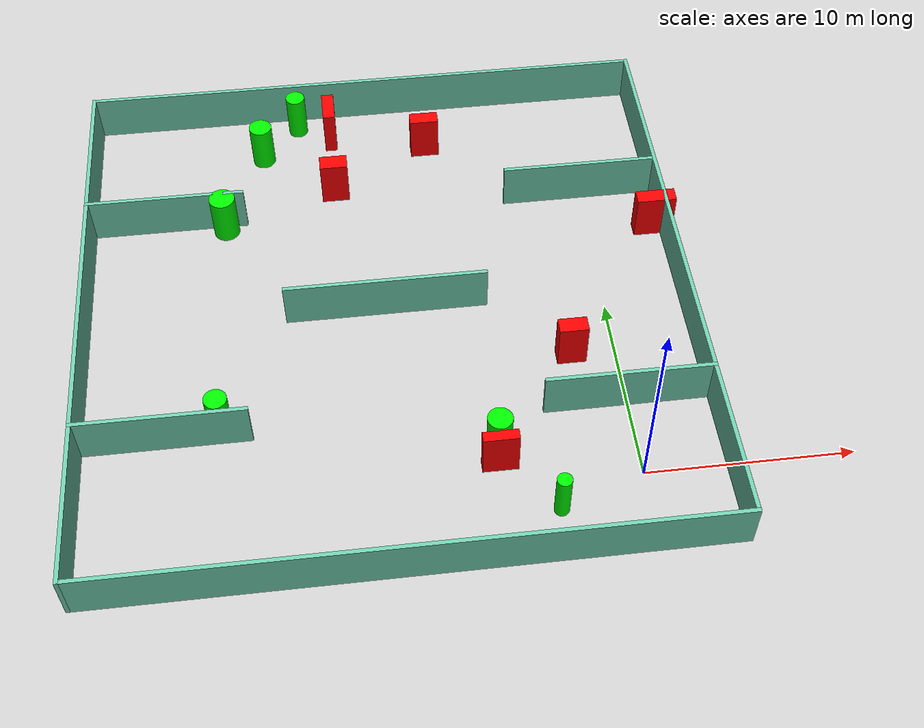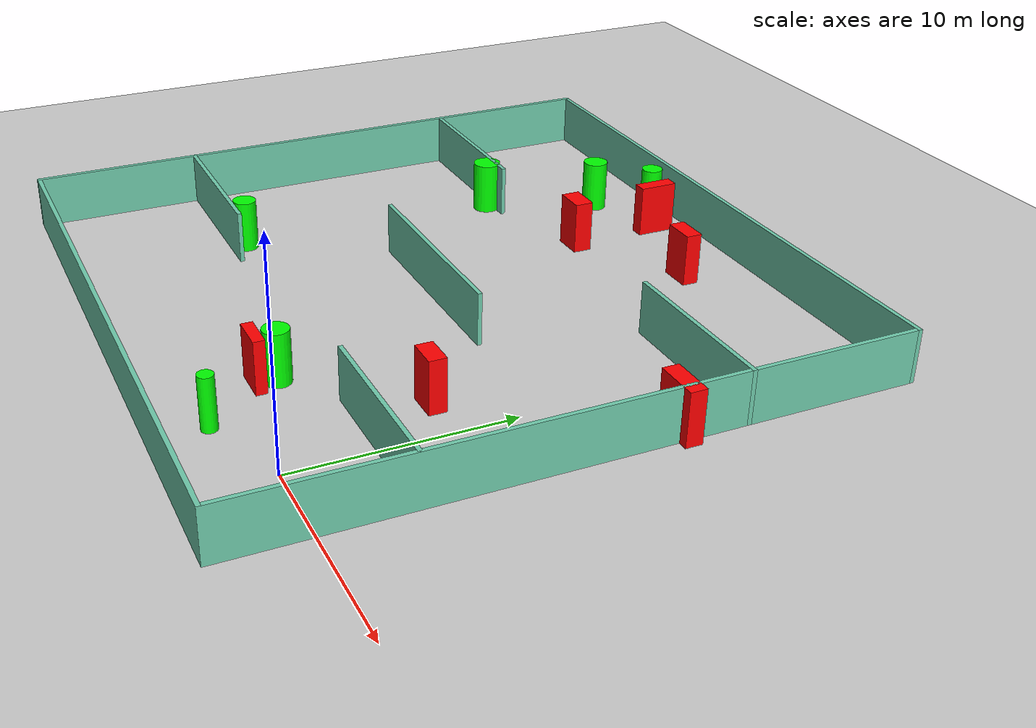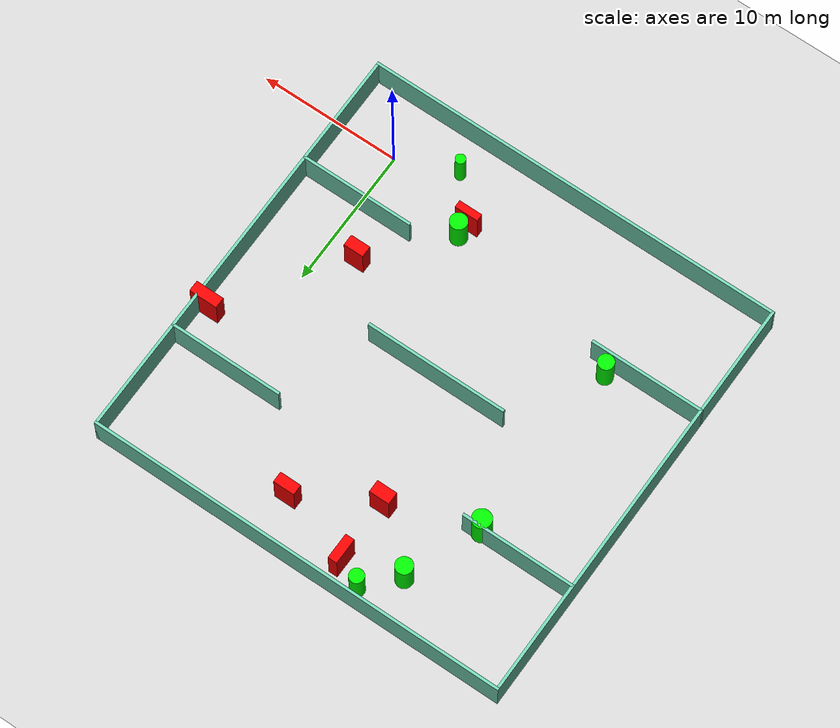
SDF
<sdf version="1.7">
 <world name="default">
  <light name="sun" type="directional">
   <pose>0 0 10 0 -0 0</pose>
   <diffuse>0.8 0.8 0.8 1</diffuse>
   <specular>0.2 0.2 0.2 1</specular>
   <attenuation>
    <range>1000</range>
    <constant>0.9</constant>
    <linear>0.01</linear>
    <quadratic>0.001</quadratic>
   </attenuation>
   <direction>-0.5 0.1 -0.9</direction>
   <spot><inner_angle>0</inner_angle><outer_angle>0</outer_angle><falloff>0</falloff></spot>
  </light>
  <model name="ground_plane">
   <static>1</static>
   <link name="link">
    <collision name="collision">
     <geometry><plane><normal>0 0 1</normal><size>100 100</size></plane></geometry>
     <surface>
      <contact><collide_bitmask>65535</collide_bitmask></contact>
      <friction><ode><mu>100</mu><mu2>50</mu2></ode></friction>
     </surface>
    </collision>
    <visual name="visual">
     <cast_shadows>0</cast_shadows>
     <geometry><plane><normal>0 0 1</normal><size>100 100</size></plane></geometry>
     <material>
      <script><uri>file://media/materials/scripts/gazebo.material</uri><name>Gazebo/Grey</name></script>
     </material>
    </visual>
   </link>
  </model>
  <gravity>0 0 -9.8</gravity>
  <magnetic_field>6e-06 2.3e-05 -4.2e-05</magnetic_field>
  <atmosphere type="adiabatic"/>
  <physics type="ode">
   <max_step_size>0.001</max_step_size>
   <real_time_factor>1</real_time_factor>
   <real_time_update_rate>1000</real_time_update_rate>
  </physics>
  <scene><ambient>0.4 0.4 0.4 1</ambient><background>0.7 0.7 0.7 1</background><shadows>1</shadows></scene>
  <spherical_coordinates>
   <surface_model>EARTH_WGS84</surface_model>
   <latitude_deg>0</latitude_deg>
   <longitude_deg>0</longitude_deg>
   <elevation>0</elevation>
   <heading_deg>0</heading_deg>
  </spherical_coordinates>
  <model name="my_base_walls">
   <link name="Wall_10">
    <collision name="Wall_10_Collision">
     <geometry><box><size>8.2 0.2 2.5</size></box></geometry>
     <pose>0 0 1.25 0 -0 0</pose>
    </collision>
    <visual name="Wall_10_Visual">
     <pose>0 0 1.25 0 -0 0</pose>
     <geometry><box><size>8.2 0.2 2.5</size></box></geometry>
     <material>
      <script><uri>file://media/materials/scripts/gazebo.material</uri><name>Gazebo/Grey</name></script>
      <ambient>0.435294 0.796078 0.67451 1</ambient>
     </material>
     <meta><layer>0</layer></meta>
    </visual>
    <pose>-11 -7 0 0 -0 0</pose>
   </link>
   <link name="Wall_12">
    <collision name="Wall_12_Collision">
     <geometry><box><size>8.2 0.2 2.5</size></box></geometry>
     <pose>0 0 1.25 0 -0 0</pose>
    </collision>
    <visual name="Wall_12_Visual">
     <pose>0 0 1.25 0 -0 0</pose>
     <geometry><box><size>8.2 0.2 2.5</size></box></geometry>
     <material>
      <script><uri>file://media/materials/scripts/gazebo.material</uri><name>Gazebo/Grey</name></script>
      <ambient>0.435294 0.796078 0.67451 1</ambient>
     </material>
     <meta><layer>0</layer></meta>
    </visual>
    <pose>-11 7 0 0 -0 0</pose>
   </link>
   <link name="Wall_14">
    <collision name="Wall_14_Collision">
     <geometry><box><size>8.2 0.2 2.5</size></box></geometry>
     <pose>0 0 1.25 0 -0 0</pose>
    </collision>
    <visual name="Wall_14_Visual">
     <pose>0 0 1.25 0 -0 0</pose>
     <geometry><box><size>8.2 0.2 2.5</size></box></geometry>
     <material>
      <script><uri>file://media/materials/scripts/gazebo.material</uri><name>Gazebo/Grey</name></script>
      <ambient>0.435294 0.796078 0.67451 1</ambient>
     </material>
     <meta><layer>0</layer></meta>
    </visual>
    <pose>11 7 0 0 -0 3.14159</pose>
   </link>
   <link name="Wall_16">
    <collision name="Wall_16_Collision">
     <geometry><box><size>10.2 0.2 2.5</size></box></geometry>
     <pose>0 0 1.25 0 -0 0</pose>
    </collision>
    <visual name="Wall_16_Visual">
     <pose>0 0 1.25 0 -0 0</pose>
     <geometry><box><size>10.2 0.2 2.5</size></box></geometry>
     <material>
      <script><uri>file://media/materials/scripts/gazebo.material</uri><name>Gazebo/Grey</name></script>
      <ambient>0.435294 0.796078 0.67451 1</ambient>
     </material>
     <meta><layer>0</layer></meta>
    </visual>
    <pose>0 0 0 0 -0 3.14159</pose>
   </link>
   <link name="Wall_2">
    <collision name="Wall_2_Collision">
     <geometry><box><size>30.2 0.2 2.5</size></box></geometry>
     <pose>0 0 1.25 0 -0 0</pose>
    </collision>
    <visual name="Wall_2_Visual">
     <pose>0 0 1.25 0 -0 0</pose>
     <geometry><box><size>30.2 0.2 2.5</size></box></geometry>
     <material>
      <script><uri>file://media/materials/scripts/gazebo.material</uri><name>Gazebo/Grey</name></script>
      <ambient>0.435294 0.796078 0.67451 1</ambient>
     </material>
     <meta><layer>0</layer></meta>
    </visual>
    <pose>0 -15 0 0 -0 3.14159</pose>
   </link>
   <link name="Wall_3">
    <collision name="Wall_3_Collision">
     <geometry><box><size>30.2 0.2 2.5</size></box></geometry>
     <pose>0 0 1.25 0 -0 0</pose>
    </collision>
    <visual name="Wall_3_Visual">
     <pose>0 0 1.25 0 -0 0</pose>
     <geometry><box><size>30.2 0.2 2.5</size></box></geometry>
     <material>
      <script><uri>file://media/materials/scripts/gazebo.material</uri><name>Gazebo/Grey</name></script>
      <ambient>0.435294 0.796078 0.67451 1</ambient>
     </material>
     <meta><layer>0</layer></meta>
    </visual>
    <pose>-15 0 0 0 -0 1.5708</pose>
   </link>
   <link name="Wall_4">
    <collision name="Wall_4_Collision">
     <geometry><box><size>30.2 0.2 2.5</size></box></geometry>
     <pose>0 0 1.25 0 -0 0</pose>
    </collision>
    <visual name="Wall_4_Visual">
     <pose>0 0 1.25 0 -0 0</pose>
     <geometry><box><size>30.2 0.2 2.5</size></box></geometry>
     <material>
      <script><uri>file://media/materials/scripts/gazebo.material</uri><name>Gazebo/Grey</name></script>
      <ambient>0.435294 0.796078 0.67451 1</ambient>
     </material>
     <meta><layer>0</layer></meta>
    </visual>
    <pose>0 15 0 0 -0 0</pose>
   </link>
   <link name="Wall_6">
    <collision name="Wall_6_Collision">
     <geometry><box><size>30.2 0.2 2.5</size></box></geometry>
     <pose>0 0 1.25 0 -0 0</pose>
    </collision>
    <visual name="Wall_6_Visual">
     <pose>0 0 1.25 0 -0 0</pose>
     <geometry><box><size>30.2 0.2 2.5</size></box></geometry>
     <material>
      <script><uri>file://media/materials/scripts/gazebo.material</uri><name>Gazebo/Grey</name></script>
      <ambient>0.435294 0.796078 0.67451 1</ambient>
     </material>
     <meta><layer>0</layer></meta>
    </visual>
    <pose>15 0 0 0 -0 1.5708</pose>
   </link>
   <link name="Wall_8">
    <collision name="Wall_8_Collision">
     <geometry><box><size>8.2 0.2 2.5</size></box></geometry>
     <pose>0 0 1.25 0 -0 0</pose>
    </collision>
    <visual name="Wall_8_Visual">
     <pose>0 0 1.25 0 -0 0</pose>
     <geometry><box><size>8.2 0.2 2.5</size></box></geometry>
     <material>
      <script><uri>file://media/materials/scripts/gazebo.material</uri><name>Gazebo/Grey</name></script>
      <ambient>0.435294 0.796078 0.67451 1</ambient>
     </material>
     <meta><layer>0</layer></meta>
    </visual>
    <pose>11 -7 0 0 -0 3.14159</pose>
   </link>
   <static>1</static>
   <pose>-11 11 0 0 -0 0</pose>
  </model>
  <model name="cylinder1">
   <static>1</static>
   <link name="link">
    <inertial>
     <mass>1</mass>
     <inertia><ixx>0.5</ixx><ixy>0</ixy><ixz>0</ixz><iyy>0.5</iyy><iyz>0</iyz><izz>1</izz></inertia>
    </inertial>
    <collision name="collision">
     <geometry><cylinder><radius>0.6018617114229037</radius><length>2.5</length></cylinder></geometry>
    </collision>
    <visual name="visual">
     <geometry><cylinder><radius>0.6018617114229037</radius><length>2.5</length></cylinder></geometry>
     <material>
      <ambient>0 1 0 1</ambient>
      <diffuse>0 1 0 1</diffuse>
      <specular>0.1 0.1 0.1 1</specular>
      <emissive>0 0 0 0</emissive>
     </material>
    </visual>
   </link>
   <pose>-16.89519847279427 22.79419501539299 1.25 0 0 0</pose>
  </model>
  <model name="cylinder2">
   <static>1</static>
   <link name="link">
    <inertial>
     <mass>1</mass>
     <inertia><ixx>0.5</ixx><ixy>0</ixy><ixz>0</ixz><iyy>0.5</iyy><iyz>0</iyz><izz>1</izz></inertia>
    </inertial>
    <collision name="collision">
     <geometry><cylinder><radius>0.5129521319317916</radius><length>2.5</length></cylinder></geometry>
    </collision>
    <visual name="visual">
     <geometry><cylinder><radius>0.5129521319317916</radius><length>2.5</length></cylinder></geometry>
     <material>
      <ambient>0 1 0 1</ambient>
      <diffuse>0 1 0 1</diffuse>
      <specular>0.1 0.1 0.1 1</specular>
      <emissive>0 0 0 0</emissive>
     </material>
    </visual>
   </link>
   <pose>-14.91225847606944 24.983701002987466 1.25 0 0 0</pose>
  </model>
  <model name="cylinder3">
   <static>1</static>
   <link name="link">
    <inertial>
     <mass>1</mass>
     <inertia><ixx>0.5</ixx><ixy>0</ixy><ixz>0</ixz><iyy>0.5</iyy><iyz>0</iyz><izz>1</izz></inertia>
    </inertial>
    <collision name="collision">
     <geometry><cylinder><radius>0.36101037449469225</radius><length>2.5</length></cylinder></geometry>
    </collision>
    <visual name="visual">
     <geometry><cylinder><radius>0.36101037449469225</radius><length>2.5</length></cylinder></geometry>
     <material>
      <ambient>0 1 0 1</ambient>
      <diffuse>0 1 0 1</diffuse>
      <specular>0.1 0.1 0.1 1</specular>
      <emissive>0 0 0 0</emissive>
     </material>
    </visual>
   </link>
   <pose>-4.100318077584463 -1.5061738703424732 1.25 0 0 0</pose>
  </model>
  <model name="cylinder4">
   <static>1</static>
   <link name="link">
    <inertial>
     <mass>1</mass>
     <inertia><ixx>0.5</ixx><ixy>0</ixy><ixz>0</ixz><iyy>0.5</iyy><iyz>0</iyz><izz>1</izz></inertia>
    </inertial>
    <collision name="collision">
     <geometry><cylinder><radius>0.6723637914654441</radius><length>2.5</length></cylinder></geometry>
    </collision>
    <visual name="visual">
     <geometry><cylinder><radius>0.6723637914654441</radius><length>2.5</length></cylinder></geometry>
     <material>
      <ambient>0 1 0 1</ambient>
      <diffuse>0 1 0 1</diffuse>
      <specular>0.1 0.1 0.1 1</specular>
      <emissive>0 0 0 0</emissive>
     </material>
    </visual>
   </link>
   <pose>-19.01753137972758 17.583860565913582 1.25 0 0 0</pose>
  </model>
  <model name="cylinder5">
   <static>1</static>
   <link name="link">
    <inertial>
     <mass>1</mass>
     <inertia><ixx>0.5</ixx><ixy>0</ixy><ixz>0</ixz><iyy>0.5</iyy><iyz>0</iyz><izz>1</izz></inertia>
    </inertial>
    <collision name="collision">
     <geometry><cylinder><radius>0.6047085070803002</radius><length>2.5</length></cylinder></geometry>
    </collision>
    <visual name="visual">
     <geometry><cylinder><radius>0.6047085070803002</radius><length>2.5</length></cylinder></geometry>
     <material>
      <ambient>0 1 0 1</ambient>
      <diffuse>0 1 0 1</diffuse>
      <specular>0.1 0.1 0.1 1</specular>
      <emissive>0 0 0 0</emissive>
     </material>
    </visual>
   </link>
   <pose>-6.476708005705017 2.0871777694988136 1.25 0 0 0</pose>
  </model>
  <model name="cylinder6">
   <static>1</static>
   <link name="link">
    <inertial>
     <mass>1</mass>
     <inertia><ixx>0.5</ixx><ixy>0</ixy><ixz>0</ixz><iyy>0.5</iyy><iyz>0</iyz><izz>1</izz></inertia>
    </inertial>
    <collision name="collision">
     <geometry><cylinder><radius>0.5579231072144062</radius><length>2.5</length></cylinder></geometry>
    </collision>
    <visual name="visual">
     <geometry><cylinder><radius>0.5579231072144062</radius><length>2.5</length></cylinder></geometry>
     <material>
      <ambient>0 1 0 1</ambient>
      <diffuse>0 1 0 1</diffuse>
      <specular>0.1 0.1 0.1 1</specular>
      <emissive>0 0 0 0</emissive>
     </material>
    </visual>
   </link>
   <pose>-19.39885928339199 4.686524511933294 1.25 0 0 0</pose>
  </model>
  <model name="box1">
   <static>1</static>
   <link name="link">
    <inertial>
     <mass>1</mass>
     <inertia><ixx>0.083</ixx><ixy>0</ixy><ixz>0</ixz><iyy>0.083</iyy><iyz>0</iyz><izz>0.083</izz></inertia>
    </inertial>
    <collision name="collision">
     <geometry><box><size>1.4339076486389022 0.8106742482891245 2.5</size></box></geometry>
    </collision>
    <visual name="visual">
     <geometry><box><size>1.4339076486389022 0.8106742482891245 2.5</size></box></geometry>
     <material>
      <ambient>1 0 0 1</ambient>
      <diffuse>1 0 0 1</diffuse>
      <specular>0.1 0.1 0.1 1</specular>
      <emissive>0 0 0 0</emissive>
     </material>
    </visual>
    <sensor name="my_contact" type="contact">
     <contact><collision>box_collision</collision><topic>__default_topic__</topic></contact>
    </sensor>
   </link>
   <pose>-2.2371423486922595 7.120748871989296 1.25 0 0 0</pose>
  </model>
  <model name="box2">
   <static>1</static>
   <link name="link">
    <inertial>
     <mass>1</mass>
     <inertia><ixx>0.083</ixx><ixy>0</ixy><ixz>0</ixz><iyy>0.083</iyy><iyz>0</iyz><izz>0.083</izz></inertia>
    </inertial>
    <collision name="collision">
     <geometry><box><size>0.6508929847361357 1.861593750638277 2.5</size></box></geometry>
    </collision>
    <visual name="visual">
     <geometry><box><size>0.6508929847361357 1.861593750638277 2.5</size></box></geometry>
     <material>
      <ambient>1 0 0 1</ambient>
      <diffuse>1 0 0 1</diffuse>
      <specular>0.1 0.1 0.1 1</specular>
      <emissive>0 0 0 0</emissive>
     </material>
    </visual>
    <sensor name="my_contact" type="contact">
     <contact><collision>box_collision</collision><topic>__default_topic__</topic></contact>
    </sensor>
   </link>
   <pose>-13.123379627020578 24.087118779094748 1.25 0 0 0</pose>
  </model>
  <model name="box3">
   <static>1</static>
   <link name="link">
    <inertial>
     <mass>1</mass>
     <inertia><ixx>0.083</ixx><ixy>0</ixy><ixz>0</ixz><iyy>0.083</iyy><iyz>0</iyz><izz>0.083</izz></inertia>
    </inertial>
    <collision name="collision">
     <geometry><box><size>1.5259491474167008 0.7631200828876454 2.5</size></box></geometry>
    </collision>
    <visual name="visual">
     <geometry><box><size>1.5259491474167008 0.7631200828876454 2.5</size></box></geometry>
     <material>
      <ambient>1 0 0 1</ambient>
      <diffuse>1 0 0 1</diffuse>
      <specular>0.1 0.1 0.1 1</specular>
      <emissive>0 0 0 0</emissive>
     </material>
    </visual>
    <sensor name="my_contact" type="contact">
     <contact><collision>box_collision</collision><topic>__default_topic__</topic></contact>
    </sensor>
   </link>
   <pose>-7.957569757080419 22.531221785546762 1.25 0 0 0</pose>
  </model>
  <model name="box4">
   <static>1</static>
   <link name="link">
    <inertial>
     <mass>1</mass>
     <inertia><ixx>0.083</ixx><ixy>0</ixy><ixz>0</ixz><iyy>0.083</iyy><iyz>0</iyz><izz>0.083</izz></inertia>
    </inertial>
    <collision name="collision">
     <geometry><box><size>1.703232299255822 0.5263473087725258 2.5</size></box></geometry>
    </collision>
    <visual name="visual">
     <geometry><box><size>1.703232299255822 0.5263473087725258 2.5</size></box></geometry>
     <material>
      <ambient>1 0 0 1</ambient>
      <diffuse>1 0 0 1</diffuse>
      <specular>0.1 0.1 0.1 1</specular>
      <emissive>0 0 0 0</emissive>
     </material>
    </visual>
    <sensor name="my_contact" type="contact">
     <contact><collision>box_collision</collision><topic>__default_topic__</topic></contact>
    </sensor>
   </link>
   <pose>-6.564020906201911 1.1464895840668223 1.25 0 0 0</pose>
  </model>
  <model name="box5">
   <static>1</static>
   <link name="link">
    <inertial>
     <mass>1</mass>
     <inertia><ixx>0.083</ixx><ixy>0</ixy><ixz>0</ixz><iyy>0.083</iyy><iyz>0</iyz><izz>0.083</izz></inertia>
    </inertial>
    <collision name="collision">
     <geometry><box><size>2.038520803957172 0.7774206705844431 2.5</size></box></geometry>
    </collision>
    <visual name="visual">
     <geometry><box><size>2.038520803957172 0.7774206705844431 2.5</size></box></geometry>
     <material>
      <ambient>1 0 0 1</ambient>
      <diffuse>1 0 0 1</diffuse>
      <specular>0.1 0.1 0.1 1</specular>
      <emissive>0 0 0 0</emissive>
     </material>
    </visual>
    <sensor name="my_contact" type="contact">
     <contact><collision>box_collision</collision><topic>__default_topic__</topic></contact>
    </sensor>
   </link>
   <pose>3.511227118824955 15.18251291268087 1.25 0 0 0</pose>
  </model>
  <model name="box6">
   <static>1</static>
   <link name="link">
    <inertial>
     <mass>1</mass>
     <inertia><ixx>0.083</ixx><ixy>0</ixy><ixz>0</ixz><iyy>0.083</iyy><iyz>0</iyz><izz>0.083</izz></inertia>
    </inertial>
    <collision name="collision">
     <geometry><box><size>1.4529587631029526 0.8889079946204232 2.5</size></box></geometry>
    </collision>
    <visual name="visual">
     <geometry><box><size>1.4529587631029526 0.8889079946204232 2.5</size></box></geometry>
     <material>
      <ambient>1 0 0 1</ambient>
      <diffuse>1 0 0 1</diffuse>
      <specular>0.1 0.1 0.1 1</specular>
      <emissive>0 0 0 0</emissive>
     </material>
    </visual>
    <sensor name="my_contact" type="contact">
     <contact><collision>box_collision</collision><topic>__default_topic__</topic></contact>
    </sensor>
   </link>
   <pose>-13.091963548099134 19.63380692129504 1.25 0 0 0</pose>
  </model>
 </world>
</sdf>
